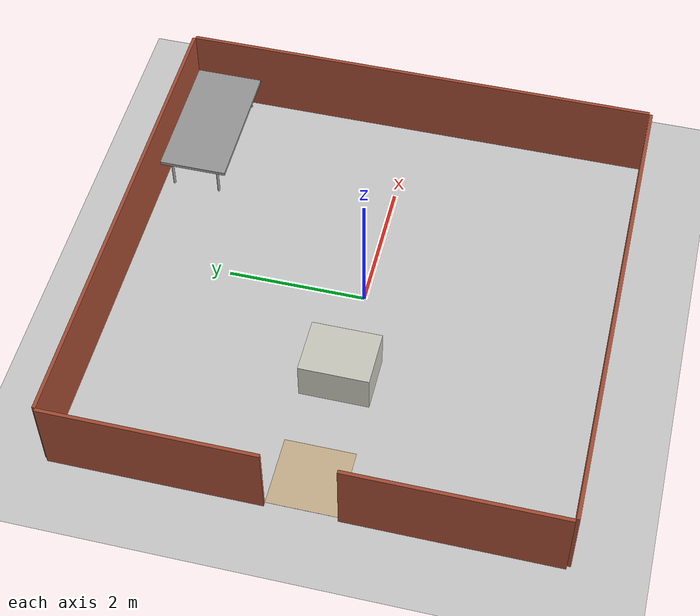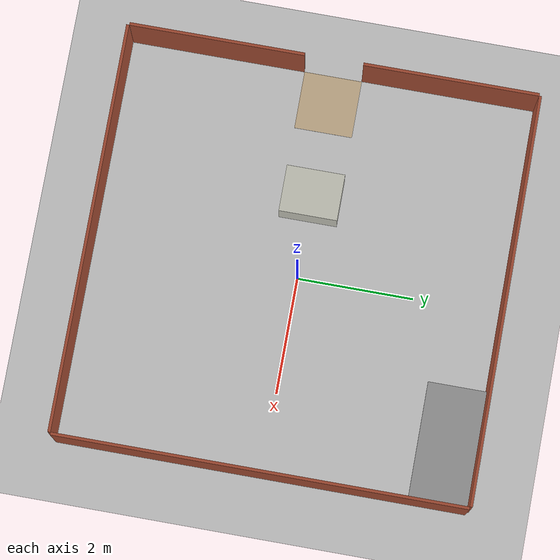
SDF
<sdf version="1.7">
 <world name="default">
  <model name="ground_plane">
   <static>1</static>
   <link name="link">
    <collision name="collision">
     <geometry><plane><normal>0 0 1</normal><size>100 100</size></plane></geometry>
     <surface><friction><ode><mu>100</mu><mu2>50</mu2></ode></friction></surface>
    </collision>
    <visual name="visual">
     <cast_shadows>0</cast_shadows>
     <geometry><plane><normal>0 0 1</normal><size>100 100</size></plane></geometry>
     <material>
      <script><uri>file://media/materials/scripts/gazebo.material</uri><name>Gazebo/Grey</name></script>
     </material>
    </visual>
   </link>
  </model>
  <model name="robcup">
   <link name="Wall_32">
    <pose>3.15787 -3.70983 0 0 -0 0</pose>
    <inertial>
     <mass>1000</mass>
     <inertia><ixx>1000</ixx><ixy>0</ixy><ixz>0</ixz><iyy>1000</iyy><iyz>0</iyz><izz>1000</izz></inertia>
    </inertial>
    <visual name="Wall_32_Visual">
     <pose>0 0 0.6 0 -0 0</pose>
     <geometry><box><size>7 0.05 1.2</size></box></geometry>
     <material>
      <script><uri>file://media/materials/scripts/gazebo.material</uri><name>Gazebo/Bricks</name></script>
      <ambient>0.761 0.663 0.627 1</ambient>
      <shader type="pixel"><normal_map>__default__</normal_map></shader>
      <diffuse>1 1 1 1</diffuse>
      <specular>0.2 0.2 0.2 1</specular>
      <emissive>0 0 0 1</emissive>
     </material>
     <meta><layer>0</layer></meta>
    </visual>
    <collision name="Wall_32_Collision">
     <pose>0 0 0.6 0 -0 0</pose>
     <geometry><box><size>7 0.05 1.2</size></box></geometry>
     <surface>
      <friction>
       <ode><mu>1</mu><mu2>1</mu2><fdir1>0 0 0</fdir1><slip1>0</slip1><slip2>0</slip2></ode>
       <torsional>
        <coefficient>1</coefficient>
        <patch_radius>0</patch_radius>
        <surface_radius>0</surface_radius>
        <use_patch_radius>1</use_patch_radius>
        <ode><slip>0</slip></ode>
       </torsional>
      </friction>
      <bounce><restitution_coefficient>0</restitution_coefficient><threshold>1e+06</threshold></bounce>
      <contact>
       <collide_without_contact>0</collide_without_contact>
       <collide_without_contact_bitmask>1</collide_without_contact_bitmask>
       <collide_bitmask>1</collide_bitmask>
       <ode>
        <soft_cfm>0</soft_cfm>
        <soft_erp>0.2</soft_erp>
        <kp>1e+13</kp>
        <kd>1</kd>
        <max_vel>0.01</max_vel>
        <min_depth>0</min_depth>
       </ode>
       <bullet>
        <split_impulse>1</split_impulse>
        <split_impulse_penetration_threshold>-0.01</split_impulse_penetration_threshold>
        <soft_cfm>0</soft_cfm>
        <soft_erp>0.2</soft_erp>
        <kp>1e+13</kp>
        <kd>1</kd>
       </bullet>
      </contact>
     </surface>
    </collision>
   </link>
   <link name="Wall_33">
    <pose>6.67781 -0.182969 0 0 -0 1.5708</pose>
    <inertial>
     <mass>1000</mass>
     <inertia><ixx>1000</ixx><ixy>0</ixy><ixz>0</ixz><iyy>1000</iyy><iyz>0</iyz><izz>1000</izz></inertia>
    </inertial>
    <visual name="Wall_33_Visual">
     <pose>0 0 0.6 0 -0 0</pose>
     <geometry><box><size>7 0.05 1.2</size></box></geometry>
     <material>
      <script><uri>file://media/materials/scripts/gazebo.material</uri><name>Gazebo/Bricks</name></script>
      <ambient>0.761 0.663 0.627 1</ambient>
      <shader type="pixel"><normal_map>__default__</normal_map></shader>
      <diffuse>1 1 1 1</diffuse>
      <specular>0.2 0.2 0.2 1</specular>
      <emissive>0 0 0 1</emissive>
     </material>
     <meta><layer>0</layer></meta>
    </visual>
    <collision name="Wall_33_Collision">
     <pose>0 0 0.6 0 -0 0</pose>
     <geometry><box><size>7 0.05 1.2</size></box></geometry>
     <surface>
      <friction>
       <ode><mu>1</mu><mu2>1</mu2><fdir1>0 0 0</fdir1><slip1>0</slip1><slip2>0</slip2></ode>
       <torsional>
        <coefficient>1</coefficient>
        <patch_radius>0</patch_radius>
        <surface_radius>0</surface_radius>
        <use_patch_radius>1</use_patch_radius>
        <ode><slip>0</slip></ode>
       </torsional>
      </friction>
      <bounce><restitution_coefficient>0</restitution_coefficient><threshold>1e+06</threshold></bounce>
      <contact>
       <collide_without_contact>0</collide_without_contact>
       <collide_without_contact_bitmask>1</collide_without_contact_bitmask>
       <collide_bitmask>1</collide_bitmask>
       <ode>
        <soft_cfm>0</soft_cfm>
        <soft_erp>0.2</soft_erp>
        <kp>1e+13</kp>
        <kd>1</kd>
        <max_vel>0.01</max_vel>
        <min_depth>0</min_depth>
       </ode>
       <bullet>
        <split_impulse>1</split_impulse>
        <split_impulse_penetration_threshold>-0.01</split_impulse_penetration_threshold>
        <soft_cfm>0</soft_cfm>
        <soft_erp>0.2</soft_erp>
        <kp>1e+13</kp>
        <kd>1</kd>
       </bullet>
      </contact>
     </surface>
    </collision>
   </link>
   <link name="Wall_34">
    <pose>3.1524 3.33828 0 0 -0 3.14159</pose>
    <inertial>
     <mass>1000</mass>
     <inertia><ixx>1000</ixx><ixy>0</ixy><ixz>0</ixz><iyy>1000</iyy><iyz>0</iyz><izz>1000</izz></inertia>
    </inertial>
    <visual name="Wall_34_Visual">
     <pose>0 0 0.6 0 -0 0</pose>
     <geometry><box><size>7 0.05 1.2</size></box></geometry>
     <material>
      <script><uri>file://media/materials/scripts/gazebo.material</uri><name>Gazebo/Bricks</name></script>
      <ambient>0.761 0.663 0.627 1</ambient>
      <shader type="pixel"><normal_map>__default__</normal_map></shader>
      <diffuse>1 1 1 1</diffuse>
      <specular>0.2 0.2 0.2 1</specular>
      <emissive>0 0 0 1</emissive>
     </material>
     <meta><layer>0</layer></meta>
    </visual>
    <collision name="Wall_34_Collision">
     <pose>0 0 0.6 0 -0 0</pose>
     <geometry><box><size>7 0.05 1.2</size></box></geometry>
     <surface>
      <friction>
       <ode><mu>1</mu><mu2>1</mu2><fdir1>0 0 0</fdir1><slip1>0</slip1><slip2>0</slip2></ode>
       <torsional>
        <coefficient>1</coefficient>
        <patch_radius>0</patch_radius>
        <surface_radius>0</surface_radius>
        <use_patch_radius>1</use_patch_radius>
        <ode><slip>0</slip></ode>
       </torsional>
      </friction>
      <bounce><restitution_coefficient>0</restitution_coefficient><threshold>1e+06</threshold></bounce>
      <contact>
       <collide_without_contact>0</collide_without_contact>
       <collide_without_contact_bitmask>1</collide_without_contact_bitmask>
       <collide_bitmask>1</collide_bitmask>
       <ode>
        <soft_cfm>0</soft_cfm>
        <soft_erp>0.2</soft_erp>
        <kp>1e+13</kp>
        <kd>1</kd>
        <max_vel>0.01</max_vel>
        <min_depth>0</min_depth>
       </ode>
       <bullet>
        <split_impulse>1</split_impulse>
        <split_impulse_penetration_threshold>-0.01</split_impulse_penetration_threshold>
        <soft_cfm>0</soft_cfm>
        <soft_erp>0.2</soft_erp>
        <kp>1e+13</kp>
        <kd>1</kd>
       </bullet>
      </contact>
     </surface>
    </collision>
   </link>
   <link name="Wall_35">
    <pose>-0.370198 1.82017 0 0 0 -1.5708</pose>
    <inertial>
     <mass>1000</mass>
     <inertia><ixx>1000</ixx><ixy>0</ixy><ixz>0</ixz><iyy>1000</iyy><iyz>0</iyz><izz>1000</izz></inertia>
    </inertial>
    <visual name="Wall_35_Visual">
     <pose>0 0 0.6 0 -0 0</pose>
     <geometry><box><size>3 0.05 1.2</size></box></geometry>
     <material>
      <script><uri>file://media/materials/scripts/gazebo.material</uri><name>Gazebo/Bricks</name></script>
      <ambient>0.761 0.663 0.627 1</ambient>
      <shader type="pixel"><normal_map>__default__</normal_map></shader>
      <diffuse>1 1 1 1</diffuse>
      <specular>0.2 0.2 0.2 1</specular>
      <emissive>0 0 0 1</emissive>
     </material>
     <meta><layer>0</layer></meta>
    </visual>
    <collision name="Wall_35_Collision">
     <pose>0 0 0.6 0 -0 0</pose>
     <geometry><box><size>3 0.05 1.2</size></box></geometry>
     <surface>
      <friction>
       <ode><mu>1</mu><mu2>1</mu2><fdir1>0 0 0</fdir1><slip1>0</slip1><slip2>0</slip2></ode>
       <torsional>
        <coefficient>1</coefficient>
        <patch_radius>0</patch_radius>
        <surface_radius>0</surface_radius>
        <use_patch_radius>1</use_patch_radius>
        <ode><slip>0</slip></ode>
       </torsional>
      </friction>
      <bounce><restitution_coefficient>0</restitution_coefficient><threshold>1e+06</threshold></bounce>
      <contact>
       <collide_without_contact>0</collide_without_contact>
       <collide_without_contact_bitmask>1</collide_without_contact_bitmask>
       <collide_bitmask>1</collide_bitmask>
       <ode>
        <soft_cfm>0</soft_cfm>
        <soft_erp>0.2</soft_erp>
        <kp>1e+13</kp>
        <kd>1</kd>
        <max_vel>0.01</max_vel>
        <min_depth>0</min_depth>
       </ode>
       <bullet>
        <split_impulse>1</split_impulse>
        <split_impulse_penetration_threshold>-0.01</split_impulse_penetration_threshold>
        <soft_cfm>0</soft_cfm>
        <soft_erp>0.2</soft_erp>
        <kp>1e+13</kp>
        <kd>1</kd>
       </bullet>
      </contact>
     </surface>
    </collision>
   </link>
   <link name="Wall_37">
    <pose>-0.364088 -2.18278 0 0 -0 1.5708</pose>
    <inertial>
     <mass>1000</mass>
     <inertia><ixx>1000</ixx><ixy>0</ixy><ixz>0</ixz><iyy>1000</iyy><iyz>0</iyz><izz>1000</izz></inertia>
    </inertial>
    <visual name="Wall_37_Visual">
     <pose>0 0 0.6 0 -0 0</pose>
     <geometry><box><size>3 0.05 1.2</size></box></geometry>
     <material>
      <script><uri>file://media/materials/scripts/gazebo.material</uri><name>Gazebo/Bricks</name></script>
      <ambient>0.761 0.663 0.627 1</ambient>
      <shader type="pixel"><normal_map>__default__</normal_map></shader>
      <diffuse>1 1 1 1</diffuse>
      <specular>0.2 0.2 0.2 1</specular>
      <emissive>0 0 0 1</emissive>
     </material>
     <meta><layer>0</layer></meta>
    </visual>
    <collision name="Wall_37_Collision">
     <pose>0 0 0.6 0 -0 0</pose>
     <geometry><box><size>3 0.05 1.2</size></box></geometry>
     <surface>
      <friction>
       <ode><mu>1</mu><mu2>1</mu2><fdir1>0 0 0</fdir1><slip1>0</slip1><slip2>0</slip2></ode>
       <torsional>
        <coefficient>1</coefficient>
        <patch_radius>0</patch_radius>
        <surface_radius>0</surface_radius>
        <use_patch_radius>1</use_patch_radius>
        <ode><slip>0</slip></ode>
       </torsional>
      </friction>
      <bounce><restitution_coefficient>0</restitution_coefficient><threshold>1e+06</threshold></bounce>
      <contact>
       <collide_without_contact>0</collide_without_contact>
       <collide_without_contact_bitmask>1</collide_without_contact_bitmask>
       <collide_bitmask>1</collide_bitmask>
       <ode>
        <soft_cfm>0</soft_cfm>
        <soft_erp>0.2</soft_erp>
        <kp>1e+13</kp>
        <kd>1</kd>
        <max_vel>0.01</max_vel>
        <min_depth>0</min_depth>
       </ode>
       <bullet>
        <split_impulse>1</split_impulse>
        <split_impulse_penetration_threshold>-0.01</split_impulse_penetration_threshold>
        <soft_cfm>0</soft_cfm>
        <soft_erp>0.2</soft_erp>
        <kp>1e+13</kp>
        <kd>1</kd>
       </bullet>
      </contact>
     </surface>
    </collision>
   </link>
   <static>1</static>
   <pose>-3.24029 0.16818 0 0 -0 0</pose>
  </model>
  <model name="robcup_bed">
   <link name="link">
    <inertial>
     <mass>100</mass>
     <inertia><ixx>2.09333</ixx><ixy>0</ixy><ixz>0</ixz><iyy>2.09333</iyy><iyz>0</iyz><izz>0.02</izz></inertia>
    </inertial>
    <visual name="visual1">
     <pose>0 0 0.5 0 -0 0</pose>
     <geometry><box><size>2 1 0.05</size></box></geometry>
     <material>
      <script><uri>file://media/materials/scripts/gazebo.material</uri><name>Gazebo/Grey</name></script>
      <shader type="pixel"><normal_map>__default__</normal_map></shader>
      <ambient>1 1 1 1</ambient>
      <diffuse>1 1 1 1</diffuse>
      <specular>0.2 0.2 0.2 1</specular>
      <emissive>0 0 0 1</emissive>
     </material>
    </visual>
    <visual name="front_right_leg">
     <pose>0.9 -0.35 0.25 0 -0 0</pose>
     <geometry><cylinder><radius>0.02</radius><length>0.5</length></cylinder></geometry>
     <material>
      <script><uri>file://media/materials/scripts/gazebo.material</uri><name>Gazebo/Grey</name></script>
      <shader type="pixel"><normal_map>__default__</normal_map></shader>
      <ambient>0.3 0.3 0.3 1</ambient>
      <diffuse>0.7 0.7 0.7 1</diffuse>
      <specular>0.01 0.01 0.01 1</specular>
      <emissive>0 0 0 1</emissive>
     </material>
    </visual>
    <visual name="front_left_leg">
     <pose>0.9 0.35 0.25 0 -0 0</pose>
     <geometry><cylinder><radius>0.02</radius><length>0.5</length></cylinder></geometry>
     <material>
      <script><uri>file://media/materials/scripts/gazebo.material</uri><name>Gazebo/Grey</name></script>
      <shader type="pixel"><normal_map>__default__</normal_map></shader>
      <ambient>0.3 0.3 0.3 1</ambient>
      <diffuse>0.7 0.7 0.7 1</diffuse>
      <specular>0.01 0.01 0.01 1</specular>
      <emissive>0 0 0 1</emissive>
     </material>
    </visual>
    <visual name="back_right_leg">
     <pose>-0.9 -0.35 0.25 0 -0 0</pose>
     <geometry><cylinder><radius>0.02</radius><length>0.5</length></cylinder></geometry>
     <material>
      <script><uri>file://media/materials/scripts/gazebo.material</uri><name>Gazebo/Grey</name></script>
      <shader type="pixel"><normal_map>__default__</normal_map></shader>
      <ambient>0.3 0.3 0.3 1</ambient>
      <diffuse>0.7 0.7 0.7 1</diffuse>
      <specular>0.01 0.01 0.01 1</specular>
      <emissive>0 0 0 1</emissive>
     </material>
    </visual>
    <visual name="back_left_leg">
     <pose>-0.9 0.35 0.25 0 -0 0</pose>
     <geometry><cylinder><radius>0.02</radius><length>0.5</length></cylinder></geometry>
     <material>
      <script><uri>file://media/materials/scripts/gazebo.material</uri><name>Gazebo/Grey</name></script>
      <shader type="pixel"><normal_map>__default__</normal_map></shader>
      <ambient>0.3 0.3 0.3 1</ambient>
      <diffuse>0.7 0.7 0.7 1</diffuse>
      <specular>0.01 0.01 0.01 1</specular>
      <emissive>0 0 0 1</emissive>
     </material>
    </visual>
    <collision name="front_left_leg">
     <pose>-0.9 0.35 0.25 0 -0 0</pose>
     <geometry><cylinder><radius>0.02</radius><length>0.5</length></cylinder></geometry>
     <surface>
      <friction>
       <ode><mu>1</mu><mu2>1</mu2><fdir1>0 0 0</fdir1><slip1>0</slip1><slip2>0</slip2></ode>
       <torsional>
        <coefficient>1</coefficient>
        <patch_radius>0</patch_radius>
        <surface_radius>0</surface_radius>
        <use_patch_radius>1</use_patch_radius>
        <ode><slip>0</slip></ode>
       </torsional>
      </friction>
      <bounce><restitution_coefficient>0</restitution_coefficient><threshold>1e+06</threshold></bounce>
      <contact>
       <collide_without_contact>0</collide_without_contact>
       <collide_without_contact_bitmask>1</collide_without_contact_bitmask>
       <collide_bitmask>1</collide_bitmask>
       <ode>
        <soft_cfm>0</soft_cfm>
        <soft_erp>0.2</soft_erp>
        <kp>1e+13</kp>
        <kd>1</kd>
        <max_vel>0.01</max_vel>
        <min_depth>0</min_depth>
       </ode>
       <bullet>
        <split_impulse>1</split_impulse>
        <split_impulse_penetration_threshold>-0.01</split_impulse_penetration_threshold>
        <soft_cfm>0</soft_cfm>
        <soft_erp>0.2</soft_erp>
        <kp>1e+13</kp>
        <kd>1</kd>
       </bullet>
      </contact>
     </surface>
    </collision>
    <collision name="surface">
     <pose>0 0 0.5 0 -0 0</pose>
     <geometry><box><size>2 1 0.03</size></box></geometry>
     <surface>
      <friction>
       <ode><mu>0.6</mu><mu2>0.6</mu2><fdir1>0 0 0</fdir1><slip1>0</slip1><slip2>0</slip2></ode>
       <torsional>
        <coefficient>1</coefficient>
        <patch_radius>0</patch_radius>
        <surface_radius>0</surface_radius>
        <use_patch_radius>1</use_patch_radius>
        <ode><slip>0</slip></ode>
       </torsional>
      </friction>
      <bounce><restitution_coefficient>0</restitution_coefficient><threshold>1e+06</threshold></bounce>
      <contact>
       <collide_without_contact>0</collide_without_contact>
       <collide_without_contact_bitmask>1</collide_without_contact_bitmask>
       <collide_bitmask>1</collide_bitmask>
       <ode>
        <soft_cfm>0</soft_cfm>
        <soft_erp>0.2</soft_erp>
        <kp>1e+13</kp>
        <kd>1</kd>
        <max_vel>0.01</max_vel>
        <min_depth>0</min_depth>
       </ode>
       <bullet>
        <split_impulse>1</split_impulse>
        <split_impulse_penetration_threshold>-0.01</split_impulse_penetration_threshold>
        <soft_cfm>0</soft_cfm>
        <soft_erp>0.2</soft_erp>
        <kp>1e+13</kp>
        <kd>1</kd>
       </bullet>
      </contact>
     </surface>
    </collision>
    <collision name="back_left_leg">
     <pose>-0.9 0.35 0.25 0 -0 0</pose>
     <geometry><cylinder><radius>0.02</radius><length>0.5</length></cylinder></geometry>
     <surface>
      <friction>
       <ode><mu>1</mu><mu2>1</mu2><fdir1>0 0 0</fdir1><slip1>0</slip1><slip2>0</slip2></ode>
       <torsional>
        <coefficient>1</coefficient>
        <patch_radius>0</patch_radius>
        <surface_radius>0</surface_radius>
        <use_patch_radius>1</use_patch_radius>
        <ode><slip>0</slip></ode>
       </torsional>
      </friction>
      <bounce><restitution_coefficient>0</restitution_coefficient><threshold>1e+06</threshold></bounce>
      <contact>
       <collide_without_contact>0</collide_without_contact>
       <collide_without_contact_bitmask>1</collide_without_contact_bitmask>
       <collide_bitmask>1</collide_bitmask>
       <ode>
        <soft_cfm>0</soft_cfm>
        <soft_erp>0.2</soft_erp>
        <kp>1e+13</kp>
        <kd>1</kd>
        <max_vel>0.01</max_vel>
        <min_depth>0</min_depth>
       </ode>
       <bullet>
        <split_impulse>1</split_impulse>
        <split_impulse_penetration_threshold>-0.01</split_impulse_penetration_threshold>
        <soft_cfm>0</soft_cfm>
        <soft_erp>0.2</soft_erp>
        <kp>1e+13</kp>
        <kd>1</kd>
       </bullet>
      </contact>
     </surface>
    </collision>
    <collision name="back_right_leg">
     <pose>-0.9 -0.35 0.25 0 -0 0</pose>
     <geometry><cylinder><radius>0.02</radius><length>0.5</length></cylinder></geometry>
     <surface>
      <friction>
       <ode><mu>1</mu><mu2>1</mu2><fdir1>0 0 0</fdir1><slip1>0</slip1><slip2>0</slip2></ode>
       <torsional>
        <coefficient>1</coefficient>
        <patch_radius>0</patch_radius>
        <surface_radius>0</surface_radius>
        <use_patch_radius>1</use_patch_radius>
        <ode><slip>0</slip></ode>
       </torsional>
      </friction>
      <bounce><restitution_coefficient>0</restitution_coefficient><threshold>1e+06</threshold></bounce>
      <contact>
       <collide_without_contact>0</collide_without_contact>
       <collide_without_contact_bitmask>1</collide_without_contact_bitmask>
       <collide_bitmask>1</collide_bitmask>
       <ode>
        <soft_cfm>0</soft_cfm>
        <soft_erp>0.2</soft_erp>
        <kp>1e+13</kp>
        <kd>1</kd>
        <max_vel>0.01</max_vel>
        <min_depth>0</min_depth>
       </ode>
       <bullet>
        <split_impulse>1</split_impulse>
        <split_impulse_penetration_threshold>-0.01</split_impulse_penetration_threshold>
        <soft_cfm>0</soft_cfm>
        <soft_erp>0.2</soft_erp>
        <kp>1e+13</kp>
        <kd>1</kd>
       </bullet>
      </contact>
     </surface>
    </collision>
    <collision name="front_right_leg">
     <pose>0.9 -0.35 0.25 0 -0 0</pose>
     <geometry><cylinder><radius>0.02</radius><length>0.5</length></cylinder></geometry>
     <surface>
      <friction>
       <ode><mu>1</mu><mu2>1</mu2><fdir1>0 0 0</fdir1><slip1>0</slip1><slip2>0</slip2></ode>
       <torsional>
        <coefficient>1</coefficient>
        <patch_radius>0</patch_radius>
        <surface_radius>0</surface_radius>
        <use_patch_radius>1</use_patch_radius>
        <ode><slip>0</slip></ode>
       </torsional>
      </friction>
      <bounce><restitution_coefficient>0</restitution_coefficient><threshold>1e+06</threshold></bounce>
      <contact>
       <collide_without_contact>0</collide_without_contact>
       <collide_without_contact_bitmask>1</collide_without_contact_bitmask>
       <collide_bitmask>1</collide_bitmask>
       <ode>
        <soft_cfm>0</soft_cfm>
        <soft_erp>0.2</soft_erp>
        <kp>1e+13</kp>
        <kd>1</kd>
        <max_vel>0.01</max_vel>
        <min_depth>0</min_depth>
       </ode>
       <bullet>
        <split_impulse>1</split_impulse>
        <split_impulse_penetration_threshold>-0.01</split_impulse_penetration_threshold>
        <soft_cfm>0</soft_cfm>
        <soft_erp>0.2</soft_erp>
        <kp>1e+13</kp>
        <kd>1</kd>
       </bullet>
      </contact>
     </surface>
    </collision>
   </link>
   <static>1</static>
   <pose>2.4097 2.97834 0 0 -0 0</pose>
  </model>
  <model name="robcup_nursedesk">
   <link name="link">
    <pose>0 0 0.3 0 -0 0</pose>
    <inertial>
     <mass>800</mass>
     <inertia><ixx>800</ixx><ixy>0</ixy><ixz>0</ixz><iyy>800</iyy><iyz>0</iyz><izz>800</izz></inertia>
    </inertial>
    <visual name="visual">
     <geometry><box><size>0.8 1 0.6</size></box></geometry>
     <material>
      <script><uri>file://media/materials/scripts/gazebo.material</uri><name>Gazebo/PaintedWall</name></script>
      <shader type="pixel"><normal_map>__default__</normal_map></shader>
      <ambient>1 1 1 1</ambient>
      <diffuse>1 1 1 1</diffuse>
      <specular>0.2 0.2 0.2 1</specular>
      <emissive>0 0 0 1</emissive>
     </material>
    </visual>
    <collision name="collision">
     <geometry><box><size>0.8 1 0.6</size></box></geometry>
     <surface>
      <friction>
       <ode><mu>1</mu><mu2>1</mu2><fdir1>0 0 0</fdir1><slip1>0</slip1><slip2>0</slip2></ode>
       <torsional>
        <coefficient>1</coefficient>
        <patch_radius>0</patch_radius>
        <surface_radius>0.01</surface_radius>
        <use_patch_radius>0</use_patch_radius>
        <ode><slip>0</slip></ode>
       </torsional>
      </friction>
      <bounce><restitution_coefficient>0</restitution_coefficient><threshold>1e+06</threshold></bounce>
      <contact>
       <collide_without_contact>0</collide_without_contact>
       <collide_without_contact_bitmask>1</collide_without_contact_bitmask>
       <collide_bitmask>1</collide_bitmask>
       <ode>
        <soft_cfm>0</soft_cfm>
        <soft_erp>0.2</soft_erp>
        <kp>100000</kp>
        <kd>100</kd>
        <max_vel>100</max_vel>
        <min_depth>0.001</min_depth>
       </ode>
       <bullet>
        <split_impulse>1</split_impulse>
        <split_impulse_penetration_threshold>-0.01</split_impulse_penetration_threshold>
        <soft_cfm>0</soft_cfm>
        <soft_erp>0.2</soft_erp>
        <kp>100000</kp>
        <kd>100</kd>
       </bullet>
      </contact>
     </surface>
    </collision>
   </link>
   <static>0</static>
   <pose>-1.40445 0.001714 -0.000512 0.001023 -1e-06 -1e-06</pose>
  </model>
  <model name="Floor_room">
   <link name="main">
    <pose>0 0 0.01 0 -0 0</pose>
    <inertial>
     <mass>1</mass>
     <inertia><ixx>1</ixx><ixy>0</ixy><ixz>0</ixz><iyy>1</iyy><iyz>0</iyz><izz>1</izz></inertia>
    </inertial>
    <visual name="main_Visual">
     <geometry><box><size>1 1 0.001</size></box></geometry>
     <material>
      <script>
       <uri>model://Floor_room/materials/scripts</uri>
       <uri>model://Floor_room/materials/textures</uri>
       <name>floor_room</name>
      </script>
      <shader type="pixel"><normal_map>__default__</normal_map></shader>
      <ambient>0.789 0.699 0.558 1</ambient>
      <diffuse>0.789 0.699 0.558 1</diffuse>
      <specular>0.789 0.699 0.558 1</specular>
      <emissive>0.789 0.699 0.558 1</emissive>
     </material>
    </visual>
    <collision name="main_Collision">
     <geometry><box><size>0 0 0</size></box></geometry>
     <surface>
      <friction>
       <ode><mu>1</mu><mu2>1</mu2><fdir1>0 0 0</fdir1><slip1>0</slip1><slip2>0</slip2></ode>
       <torsional>
        <coefficient>1</coefficient>
        <patch_radius>0</patch_radius>
        <surface_radius>0</surface_radius>
        <use_patch_radius>1</use_patch_radius>
        <ode><slip>0</slip></ode>
       </torsional>
      </friction>
      <bounce><restitution_coefficient>0</restitution_coefficient><threshold>1e+06</threshold></bounce>
      <contact>
       <collide_without_contact>0</collide_without_contact>
       <collide_without_contact_bitmask>1</collide_without_contact_bitmask>
       <collide_bitmask>1</collide_bitmask>
       <ode>
        <soft_cfm>0</soft_cfm>
        <soft_erp>0.2</soft_erp>
        <kp>1e+13</kp>
        <kd>1</kd>
        <max_vel>0.01</max_vel>
        <min_depth>0</min_depth>
       </ode>
       <bullet>
        <split_impulse>1</split_impulse>
        <split_impulse_penetration_threshold>-0.01</split_impulse_penetration_threshold>
        <soft_cfm>0</soft_cfm>
        <soft_erp>0.2</soft_erp>
        <kp>1e+13</kp>
        <kd>1</kd>
       </bullet>
      </contact>
     </surface>
    </collision>
   </link>
   <static>1</static>
   <pose>-3.07994 -0.010606 0 0 -0 0</pose>
  </model>
 </world>
</sdf>
